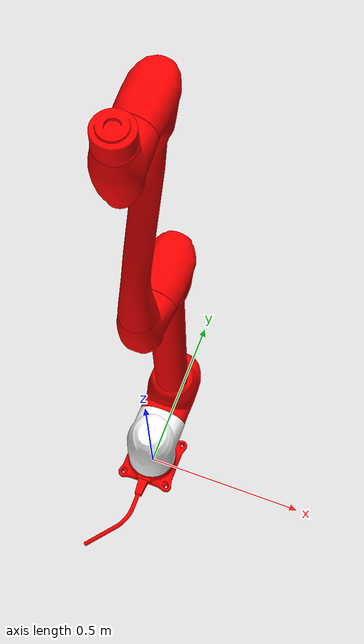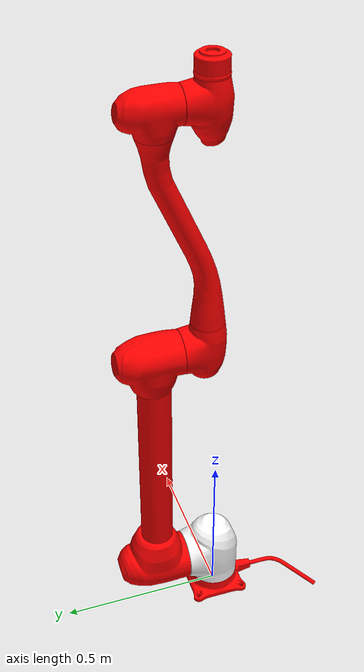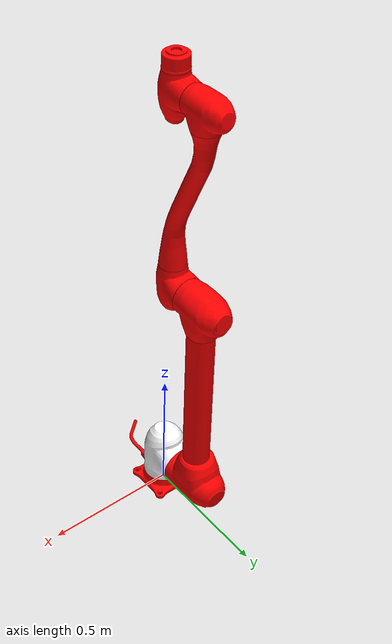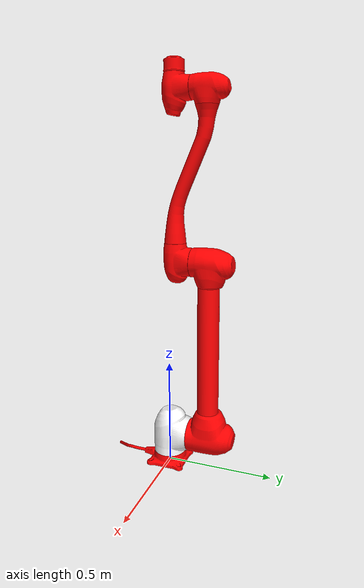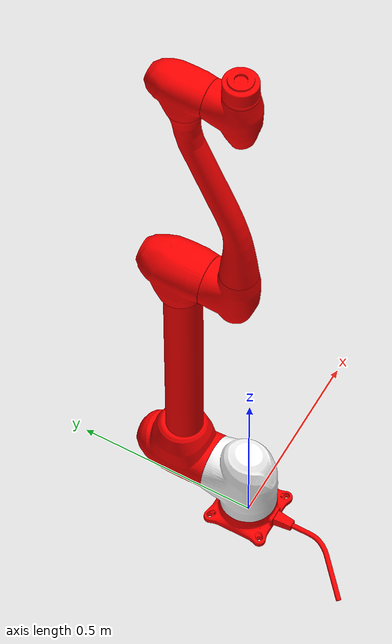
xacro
<?xml version="1.0"?>
<robot xmlns:xacro="http://www.ros.org/wiki/xacro" name="m0617">
    <xacro:arg name="initial_positions_file" default="initial_positions.yaml" />
    <link name="world"/>
    <joint name="world_fixed" type="fixed">
        <origin xyz="0 0 0" rpy="0 0 0"/>
        <parent link="world"/>
        <child link="base_link"/>
    </joint>
    <!-- Import m0617 urdf file -->
    <xacro:include filename="$(find dsr_description2)/urdf/m0617.urdf" />

    <!-- Import m0617 ros2_control description -->

    <xacro:include filename="dsr.ros2_control.xacro" />

    <xacro:dsr_moveit_ros2_control name="DSRFakeSystem" initial_positions_file="$(arg initial_positions_file)"/>
</robot>

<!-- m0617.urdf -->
<robot name="m0617" xmlns:xacro="http://www.ros.org/wiki/xacro">
		<link name="base_link">
			<inertial>
				<mass value="4.12"/>
				<origin xyz="-3.4e-05   -0.004815    0.048482"/>
				<inertia ixx="0.020415" ixy="-3.9311e-06" ixz="2.3764e-06" iyy="0.014927"
					iyz="-0.00051388"
					izz="0.023376"/>
			</inertial>
			<collision>
				<origin rpy="0 0 0" xyz="0 0 0" />
				<geometry>
					<mesh filename="package://dsr_description2/meshes/m0617_collision/MF0617_0_0.dae" scale="0.001 0.001 0.001" />
				</geometry>
			</collision>
			<visual>
				<origin rpy="0 0 0" xyz="0 0 0" />
				<geometry>
					<mesh filename="package://dsr_description2/meshes/m0617_white/MF0617_0_0.dae" scale="0.001 0.001 0.001" />
				</geometry>
			</visual>
		</link>
		<link name="base"/>
		<joint name="base_link-base" type="fixed">
			<origin rpy="0 0 0" xyz="0 0 0.450"/>
			<parent link="base_link"/>
			<child link="base"/>
		</joint>
		<!-- joint 1 -->
		<joint name="joint_1" type="revolute">
			<parent link="base_link" />
			<child link="link_1" />
			<origin rpy="0 0 0" xyz="0 0 0.1525" />
			<axis xyz="0 0 1" />
			<limit effort="346" lower="-6.2832" upper="6.2832" velocity="1.7453"/>
			<dynamics friction="0" />
		</joint>
		<link name="link_1">
			<inertial>
				<mass value="7.8"/>
				<origin xyz="0.000119      0.0428   -0.006383"/>
				<inertia ixx="0.047267" ixy="4.1409e-05" ixz="-5.3877e-05" iyy="0.03119"
					iyz="-0.0019953"
					izz="0.047021"/>
			</inertial>
            <collision>
				<origin rpy="0 0 0" xyz="0 0 0" />
				<geometry>
					<mesh filename="package://dsr_description2/meshes/m0617_collision/MF0617_1_0.dae" scale="0.001 0.001 0.001" />
				</geometry>
			</collision>
			<visual>
				<origin rpy="0 0 0" xyz="0 0 0" />
				<geometry>
					<mesh filename="package://dsr_description2/meshes/m0617_white/MF0617_1_0.dae" scale="0.001 0.001 0.001" />
				</geometry>
			</visual>
		</link>
		<!-- joint2 -->
		<joint name="joint_2" type="revolute">
			<parent link="link_1" />
			<child link="link_2" />
			<origin rpy="0 -1.571 -1.571" xyz="0 0.0345 0" />
			<axis xyz="0 0 1" />
			<limit effort="346" lower="-6.2832" upper="6.2832" velocity="1.7453"/>
			<dynamics friction="0" />
		</joint>
		<link name="link_2">
			<inertial>
				<mass value="11.55"/>
				<origin xyz="0.35752      -5e-05      0.1582"/>
				<inertia ixx="0.039245" ixy="-0.00050916" ixz="-0.0099927" iyy="1.6244" iyz="4.4298e-05"
					izz="1.626"/>
			</inertial>
            <collision>
				<origin rpy="0 0 0" xyz="0 0 0" />
				<geometry>
					<mesh filename="package://dsr_description2/meshes/m0617_collision/MF0617_2_0.dae" scale="0.001 0.001 0.001" />
				</geometry>
			</collision>
			<visual>
				<origin rpy="0 0 0" xyz="0 0 0" />
				<geometry>
					<mesh filename="package://dsr_description2/meshes/m0617_white/MF0617_2_0.dae" scale="0.001 0.001 0.001" />
				</geometry>
			</visual>
			<collision>
				<origin rpy="0 0 0" xyz="0 0 0" />
				<geometry>
					<mesh filename="package://dsr_description2/meshes/m0617_collision/MF0617_2_1.dae" scale="0.001 0.001 0.001" />
				</geometry>
			</collision>
			<visual>
				<origin rpy="0 0 0" xyz="0 0 0" />
				<geometry>
					<mesh filename="package://dsr_description2/meshes/m0617_white/MF0617_2_1.dae" scale="0.001 0.001 0.001" />
				</geometry>
			</visual>
			<collision>
				<origin rpy="0 0 0" xyz="0 0 0" />
				<geometry>
					<mesh filename="package://dsr_description2/meshes/m0617_collision/MF0617_2_2.dae" scale="0.001 0.001 0.001" />
				</geometry>
			</collision>
			<visual>
				<origin rpy="0 0 0" xyz="0 0 0" />
				<geometry>
					<mesh filename="package://dsr_description2/meshes/m0617_white/MF0617_2_2.dae" scale="0.001 0.001 0.001" />
				</geometry>
			</visual>
		</link>
		<!-- joint3 -->
		<joint name="joint_3" type="revolute">
			<parent link="link_2" />
			<child link="link_3" />
			<origin rpy="0 0 1.571" xyz="0.845 0 0" />
			<axis xyz="0 0 1" />
			<limit effort="163" lower="-2.8798" upper="2.8798" velocity="2.618"/>
			<dynamics friction="0" />
		</joint>
		<link name="link_3">
			<inertial>
				<mass value="3.68"/>
				<origin xyz="-1.5e-05   -0.006702    0.044608"/>
				<inertia ixx="0.020579" ixy="1.0111e-05" ixz="-6.784e-07" iyy="0.019181"
					iyz="-0.0009947"
					izz="0.014379"/>
			</inertial>
			<collision>
				<origin rpy="0 0 0" xyz="0 0 0" />
				<geometry>
					<mesh filename="package://dsr_description2/meshes/m0617_collision/MF0617_3_0.dae" scale="0.001 0.001 0.001" />
				</geometry>
			</collision>
			<visual>
				<origin rpy="0 0 0" xyz="0 0 0" />
				<geometry>
					<mesh filename="package://dsr_description2/meshes/m0617_white/MF0617_3_0.dae" scale="0.001 0.001 0.001" />
				</geometry>
			</visual>
		</link>
		<!-- joint4 -->
		<joint name="joint_4" type="revolute">
			<parent link="link_3" />
			<child link="link_4" />
			<origin rpy="1.571 0 0" xyz="0 -0.734 0" />
			<axis xyz="0 0 1" />
			<limit effort="50" lower="-6.2832" upper="6.2832" velocity="3.927"/>
			<dynamics friction="0" />
		</joint>
		<link name="link_4">
			<inertial>
				<mass value="4.28"/>
				<origin xyz="5.7e-05    0.091288    -0.25319"/>
				<inertia ixx="0.35652" ixy="-1.8897e-05" ixz="-4.9971e-05" iyy="0.33627" iyz="-0.076995"
					izz="0.029844"/>
			</inertial>
            <collision>
				<origin rpy="0 0 0" xyz="0 0 0" />
				<geometry>
					<mesh filename="package://dsr_description2/meshes/m0617_collision/MF0617_4_0.dae" scale="0.001 0.001 0.001" />
				</geometry>
			</collision>
			<visual>
				<origin rpy="0 0 0" xyz="0 0 0" />
				<geometry>
					<mesh filename="package://dsr_description2/meshes/m0617_white/MF0617_4_0.dae" scale="0.001 0.001 0.001" />
				</geometry>
			</visual>
			<collision>
				<origin rpy="0 0 0" xyz="0 0 0" />
				<geometry>
					<mesh filename="package://dsr_description2/meshes/m0617_collision/MF0617_4_1.dae" scale="0.001 0.001 0.001" />
				</geometry>
			</collision>
			<visual>
				<origin rpy="0 0 0" xyz="0 0 0" />
				<geometry>
					<mesh filename="package://dsr_description2/meshes/m0617_white/MF0617_4_1.dae" scale="0.001 0.001 0.001" />
				</geometry>
			</visual>
		</link>
		<!-- joint5 -->
		<joint name="joint_5" type="revolute">
			<parent link="link_4" />
			<child link="link_5" />
			<origin rpy="-1.571 0 0" xyz="0 0 0" />
			<axis xyz="0 0 1" />
			<limit effort="50" lower="-6.2832" upper="6.2832" velocity="3.927"/>
			<dynamics friction="0" />
		</joint>
		<link name="link_5">
			<inertial>
				<mass value="2.8"/>
         	<origin xyz="-0.000273    0.003651     0.032087"/>
				<inertia ixx="0.012016" ixy="2.1647e-05" ixz="-4.85e-06" iyy="0.013232" iyz="0.00042654"
					izz="0.010423"/>
			</inertial>
            <collision>
				<origin rpy="0 0 0" xyz="0 0 0" />
				<geometry>
					<mesh filename="package://dsr_description2/meshes/m0617_collision/MF0617_5_0.dae" scale="0.001 0.001 0.001" />
				</geometry>
			</collision>
			<visual>
				<origin rpy="0 0 0" xyz="0 0 0" />
				<geometry>
					<mesh filename="package://dsr_description2/meshes/m0617_white/MF0617_5_0.dae" scale="0.001 0.001 0.001" />
				</geometry>
			</visual>
		</link>
		<!-- joint6 -->
		<joint name="joint_6" type="revolute">
			<parent link="link_5" />
			<child link="link_6" />
			<origin rpy="1.571 0 0" xyz="0 -0.121 0" />
			<axis xyz="0 0 1" />
			<limit effort="50" lower="-6.2832" upper="6.2832" velocity="3.927"/>
			<dynamics friction="0" />
		</joint>
		<link name="link_6">
			<inertial>
				<mass value="1.16"/>
				<origin xyz="-0.000292       7e-06     -0.0539"/>
				<inertia ixx="0.0086448" ixy="3.5791e-06" ixz="5.1469e-06" iyy="0.0045613"
					iyz="5.8483e-06"
					izz="0.0086768"/>
			</inertial>
			<collision>
				<origin rpy="0 0 0" xyz="0 0 0" />
				<geometry>
					<mesh filename="package://dsr_description2/meshes/m0617_collision/MF0617_6_0.dae" scale="0.001 0.001 0.001" />
				</geometry>
			</collision>
			<visual>
				<origin rpy="0 0 0" xyz="0 0 0" />
				<geometry>
					<mesh filename="package://dsr_description2/meshes/m0617_white/MF0617_6_0.dae" scale="0.001 0.001 0.001" />
				</geometry>
			</visual>
		</link>
</robot>
